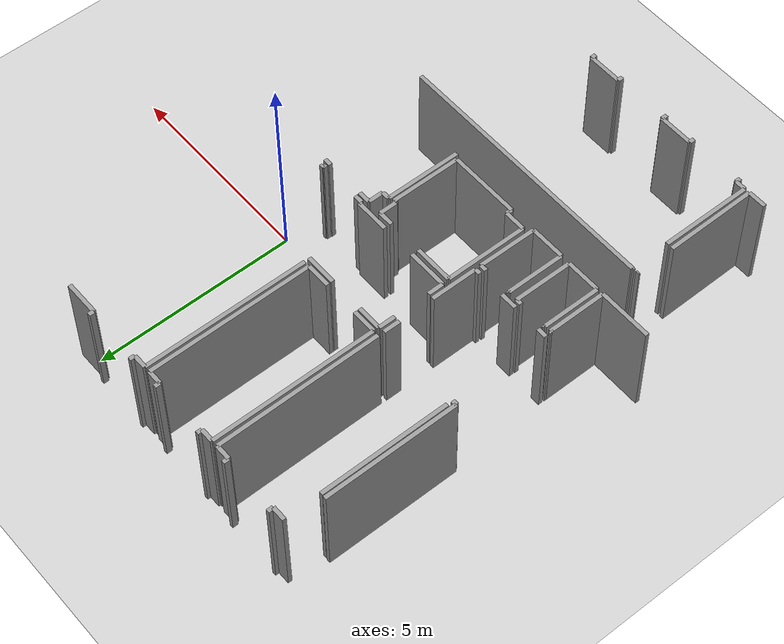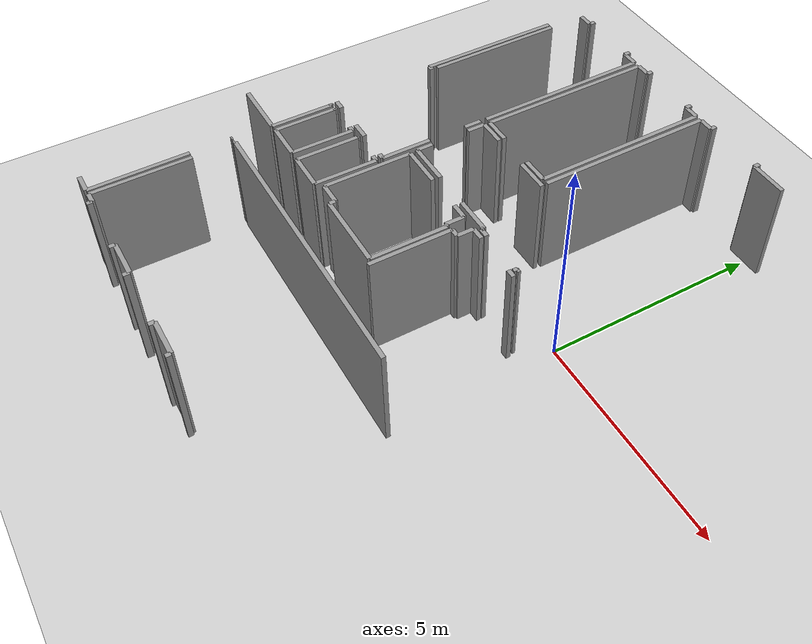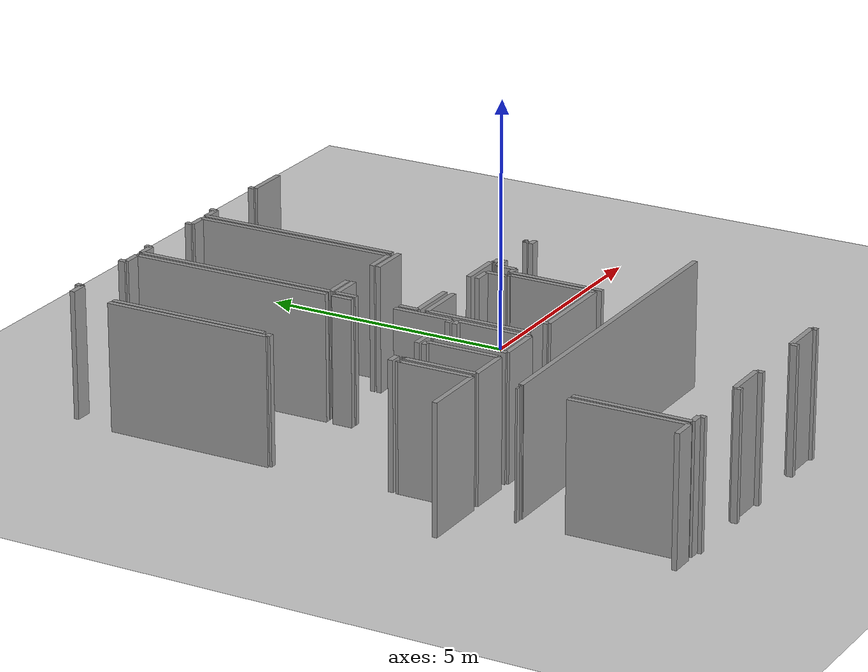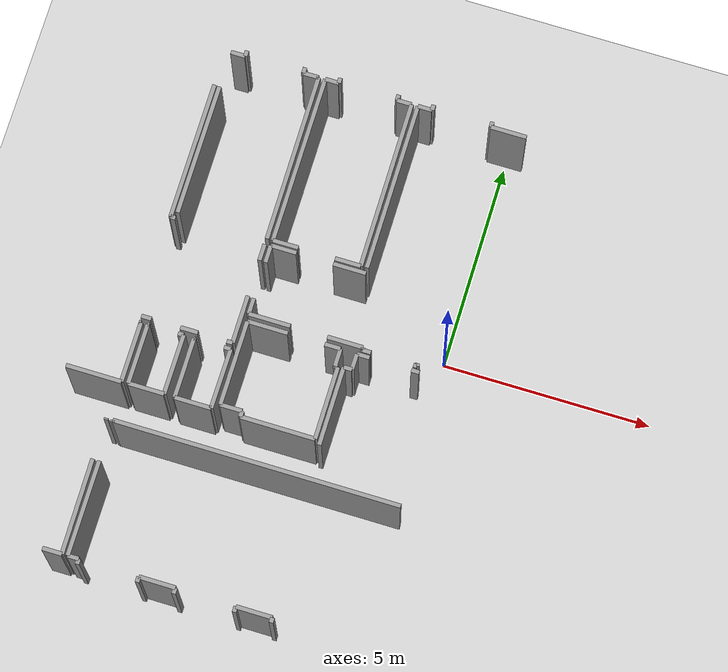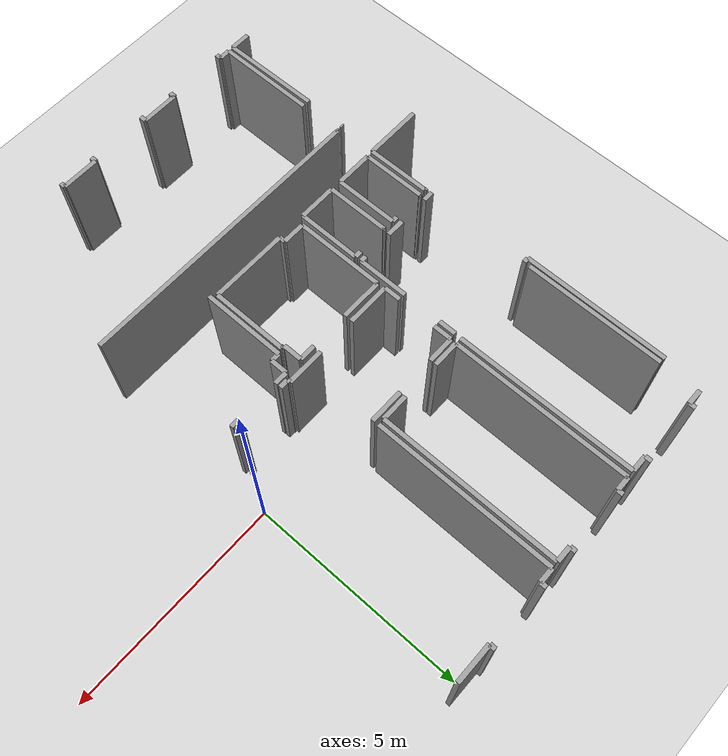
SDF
<sdf version="1.6">
 <world name="default">
  <model name="ground_plane">
   <static>1</static>
   <link name="link">
    <collision name="collision">
     <geometry><plane><normal>0 0 1</normal><size>100 100</size></plane></geometry>
     <surface><friction><ode><mu>100</mu><mu2>50</mu2></ode></friction></surface>
    </collision>
    <visual name="visual">
     <cast_shadows>0</cast_shadows>
     <geometry><plane><normal>0 0 1</normal><size>100 100</size></plane></geometry>
     <material>
      <script><uri>file://media/materials/scripts/gazebo.material</uri><name>Gazebo/Grey</name></script>
     </material>
    </visual>
   </link>
  </model>
  <model name="0510025537_Layout1_PLAN3">
   <static>1</static>
   <link name="Wall_0">
    <collision name="Wall_0_Collision">
     <geometry><box><size>1.1547944335 0.1 2.5</size></box></geometry>
     <pose>0.57739721675 0 1.25 0 0 0</pose>
    </collision>
    <visual name="Wall_0_Visual">
     <pose>0.57739721675 0 1.25 0 0 0</pose>
     <geometry><box><size>1.1547944335 0.1 2.5</size></box></geometry>
     <material>
      <script><uri>file://media/materials/scripts/gazebo.material</uri><name>Gazebo/Grey</name></script>
      <ambient>1 1 1 1</ambient>
     </material>
    </visual>
    <pose>15.6459109106 -5.61763995679 0 0 0 -1.57079632679</pose>
   </link>
   <link name="Wall_1">
    <collision name="Wall_1_Collision">
     <geometry><box><size>0.140115651014 0.1 2.5</size></box></geometry>
     <pose>0.0700578255068 0 1.25 0 0 0</pose>
    </collision>
    <visual name="Wall_1_Visual">
     <pose>0.0700578255068 0 1.25 0 0 0</pose>
     <geometry><box><size>0.140115651014 0.1 2.5</size></box></geometry>
     <material>
      <script><uri>file://media/materials/scripts/gazebo.material</uri><name>Gazebo/Grey</name></script>
      <ambient>1 1 1 1</ambient>
     </material>
    </visual>
    <pose>15.6459109106 -6.77243439029 0 0 0 3.14159265359</pose>
   </link>
   <link name="Wall_2">
    <collision name="Wall_2_Collision">
     <geometry><box><size>0.414818580416 0.1 2.5</size></box></geometry>
     <pose>0.207409290208 0 1.25 0 0 0</pose>
    </collision>
    <visual name="Wall_2_Visual">
     <pose>0.207409290208 0 1.25 0 0 0</pose>
     <geometry><box><size>0.414818580416 0.1 2.5</size></box></geometry>
     <material>
      <script><uri>file://media/materials/scripts/gazebo.material</uri><name>Gazebo/Grey</name></script>
      <ambient>1 1 1 1</ambient>
     </material>
    </visual>
    <pose>14.8190061638 -6.77243439029 0 0 0 3.14159265359</pose>
   </link>
   <link name="Wall_3">
    <collision name="Wall_3_Collision">
     <geometry><box><size>0.239816991803 0.1 2.5</size></box></geometry>
     <pose>0.119908495901 0 1.25 0 0 0</pose>
    </collision>
    <visual name="Wall_3_Visual">
     <pose>0.119908495901 0 1.25 0 0 0</pose>
     <geometry><box><size>0.239816991803 0.1 2.5</size></box></geometry>
     <material>
      <script><uri>file://media/materials/scripts/gazebo.material</uri><name>Gazebo/Grey</name></script>
      <ambient>1 1 1 1</ambient>
     </material>
    </visual>
    <pose>13.711615937 -6.77243439029 0 0 0 3.14159265359</pose>
   </link>
   <link name="Wall_33">
    <collision name="Wall_33_Collision">
     <geometry><box><size>3.32291415136 0.1 2.5</size></box></geometry>
     <pose>1.66145707568 0 1.25 0 0 0</pose>
    </collision>
    <visual name="Wall_33_Visual">
     <pose>1.66145707568 0 1.25 0 0 0</pose>
     <geometry><box><size>3.32291415136 0.1 2.5</size></box></geometry>
     <material>
      <script><uri>file://media/materials/scripts/gazebo.material</uri><name>Gazebo/Grey</name></script>
      <ambient>1 1 1 1</ambient>
     </material>
    </visual>
    <pose>13.3876024655 -1.01621020525 0 0 0 -1.57079632679</pose>
   </link>
   <link name="Wall_34">
    <collision name="Wall_34_Collision">
     <geometry><box><size>0.116350003177 0.1 2.5</size></box></geometry>
     <pose>0.0581750015886 0 1.25 0 0 0</pose>
    </collision>
    <visual name="Wall_34_Visual">
     <pose>0.0581750015886 0 1.25 0 0 0</pose>
     <geometry><box><size>0.116350003177 0.1 2.5</size></box></geometry>
     <material>
      <script><uri>file://media/materials/scripts/gazebo.material</uri><name>Gazebo/Grey</name></script>
      <ambient>1 1 1 1</ambient>
     </material>
    </visual>
    <pose>13.3876024655 -4.33912435661 0 0 0 0.0</pose>
   </link>
   <link name="Wall_35">
    <collision name="Wall_35_Collision">
     <geometry><box><size>0.400839109927 0.1 2.5</size></box></geometry>
     <pose>0.200419554964 0 1.25 0 0 0</pose>
    </collision>
    <visual name="Wall_35_Visual">
     <pose>0.200419554964 0 1.25 0 0 0</pose>
     <geometry><box><size>0.400839109927 0.1 2.5</size></box></geometry>
     <material>
      <script><uri>file://media/materials/scripts/gazebo.material</uri><name>Gazebo/Grey</name></script>
      <ambient>1 1 1 1</ambient>
     </material>
    </visual>
    <pose>15.6464192667 -4.33912435661 0 0 0 -1.57206455693</pose>
   </link>
   <link name="Wall_36">
    <collision name="Wall_36_Collision">
     <geometry><box><size>3.1744678147 0.1 2.5</size></box></geometry>
     <pose>1.58723390735 0 1.25 0 0 0</pose>
    </collision>
    <visual name="Wall_36_Visual">
     <pose>1.58723390735 0 1.25 0 0 0</pose>
     <geometry><box><size>3.1744678147 0.1 2.5</size></box></geometry>
     <material>
      <script><uri>file://media/materials/scripts/gazebo.material</uri><name>Gazebo/Grey</name></script>
      <ambient>1 1 1 1</ambient>
     </material>
    </visual>
    <pose>13.5077651395 -4.20123276355 0 0 0 1.57079632679</pose>
   </link>
   <link name="Wall_37">
    <collision name="Wall_37_Collision">
     <geometry><box><size>0.345936328398 0.1 2.5</size></box></geometry>
     <pose>0.172968164199 0 1.25 0 0 0</pose>
    </collision>
    <visual name="Wall_37_Visual">
     <pose>0.172968164199 0 1.25 0 0 0</pose>
     <geometry><box><size>0.345936328398 0.1 2.5</size></box></geometry>
     <material>
      <script><uri>file://media/materials/scripts/gazebo.material</uri><name>Gazebo/Grey</name></script>
      <ambient>1 1 1 1</ambient>
     </material>
    </visual>
    <pose>13.5077651395 -0.141716972739 0 0 0 0.0</pose>
   </link>
   <link name="Wall_38">
    <collision name="Wall_38_Collision">
     <geometry><box><size>0.13842536697 0.1 2.5</size></box></geometry>
     <pose>0.0692126834848 0 1.25 0 0 0</pose>
    </collision>
    <visual name="Wall_38_Visual">
     <pose>0.0692126834848 0 1.25 0 0 0</pose>
     <geometry><box><size>0.13842536697 0.1 2.5</size></box></geometry>
     <material>
      <script><uri>file://media/materials/scripts/gazebo.material</uri><name>Gazebo/Grey</name></script>
      <ambient>1 1 1 1</ambient>
     </material>
    </visual>
    <pose>13.8537014679 -0.141716972739 0 0 0 1.57079632679</pose>
   </link>
   <link name="Wall_39">
    <collision name="Wall_39_Collision">
     <geometry><box><size>0.140109296562 0.1 2.5</size></box></geometry>
     <pose>0.0700546482811 0 1.25 0 0 0</pose>
    </collision>
    <visual name="Wall_39_Visual">
     <pose>0.0700546482811 0 1.25 0 0 0</pose>
     <geometry><box><size>0.140109296562 0.1 2.5</size></box></geometry>
     <material>
      <script><uri>file://media/materials/scripts/gazebo.material</uri><name>Gazebo/Grey</name></script>
      <ambient>1 1 1 1</ambient>
     </material>
    </visual>
    <pose>15.2668043464 -0.00329160576984 0 0 0 -1.57079632679</pose>
   </link>
   <link name="Wall_40">
    <collision name="Wall_40_Collision">
     <geometry><box><size>0.370845777467 0.1 2.5</size></box></geometry>
     <pose>0.185422888734 0 1.25 0 0 0</pose>
    </collision>
    <visual name="Wall_40_Visual">
     <pose>0.185422888734 0 1.25 0 0 0</pose>
     <geometry><box><size>0.370845777467 0.1 2.5</size></box></geometry>
     <material>
      <script><uri>file://media/materials/scripts/gazebo.material</uri><name>Gazebo/Grey</name></script>
      <ambient>1 1 1 1</ambient>
     </material>
    </visual>
    <pose>15.2668043464 -0.143400902332 0 0 0 0.0</pose>
   </link>
   <link name="Wall_41">
    <collision name="Wall_41_Collision">
     <geometry><box><size>4.05787059041 0.1 2.5</size></box></geometry>
     <pose>2.0289352952 0 1.25 0 0 0</pose>
    </collision>
    <visual name="Wall_41_Visual">
     <pose>2.0289352952 0 1.25 0 0 0</pose>
     <geometry><box><size>4.05787059041 0.1 2.5</size></box></geometry>
     <material>
      <script><uri>file://media/materials/scripts/gazebo.material</uri><name>Gazebo/Grey</name></script>
      <ambient>1 1 1 1</ambient>
     </material>
    </visual>
    <pose>15.6376501239 -0.143400902332 0 0 0 -1.56642729256</pose>
   </link>
   <link name="Wall_64">
    <collision name="Wall_64_Collision">
     <geometry><box><size>0.457774671157 0.1 2.5</size></box></geometry>
     <pose>0.228887335579 0 1.25 0 0 0</pose>
    </collision>
    <visual name="Wall_64_Visual">
     <pose>0.228887335579 0 1.25 0 0 0</pose>
     <geometry><box><size>0.457774671157 0.1 2.5</size></box></geometry>
     <material>
      <script><uri>file://media/materials/scripts/gazebo.material</uri><name>Gazebo/Grey</name></script>
      <ambient>1 1 1 1</ambient>
     </material>
    </visual>
    <pose>13.4717989452 -12.5103132744 0 0 0 3.14159265359</pose>
   </link>
   <link name="Wall_87">
    <collision name="Wall_87_Collision">
     <geometry><box><size>0.0371735400648 0.1 2.5</size></box></geometry>
     <pose>0.0185867700324 0 1.25 0 0 0</pose>
    </collision>
    <visual name="Wall_87_Visual">
     <pose>0.0185867700324 0 1.25 0 0 0</pose>
     <geometry><box><size>0.0371735400648 0.1 2.5</size></box></geometry>
     <material>
      <script><uri>file://media/materials/scripts/gazebo.material</uri><name>Gazebo/Grey</name></script>
      <ambient>1 1 1 1</ambient>
     </material>
    </visual>
    <pose>13.4517188791 -9.2658575332 0 0 0 -1.57079632679</pose>
   </link>
   <link name="Wall_88">
    <collision name="Wall_88_Collision">
     <geometry><box><size>2.26405295432 0.1 2.5</size></box></geometry>
     <pose>1.13202647716 0 1.25 0 0 0</pose>
    </collision>
    <visual name="Wall_88_Visual">
     <pose>1.13202647716 0 1.25 0 0 0</pose>
     <geometry><box><size>2.26405295432 0.1 2.5</size></box></geometry>
     <material>
      <script><uri>file://media/materials/scripts/gazebo.material</uri><name>Gazebo/Grey</name></script>
      <ambient>1 1 1 1</ambient>
     </material>
    </visual>
    <pose>13.4517188791 -10.2463493677 0 0 0 -1.56192713082</pose>
   </link>
   <link name="Wall_89">
    <collision name="Wall_89_Collision">
     <geometry><box><size>1.31912054394 0.1 2.5</size></box></geometry>
     <pose>0.659560271971 0 1.25 0 0 0</pose>
    </collision>
    <visual name="Wall_89_Visual">
     <pose>0.659560271971 0 1.25 0 0 0</pose>
     <geometry><box><size>1.31912054394 0.1 2.5</size></box></geometry>
     <material>
      <script><uri>file://media/materials/scripts/gazebo.material</uri><name>Gazebo/Grey</name></script>
      <ambient>1 1 1 1</ambient>
     </material>
    </visual>
    <pose>13.5145008579 -8.36581305204 0 0 0 3.14159265359</pose>
   </link>
   <link name="Wall_92">
    <collision name="Wall_92_Collision">
     <geometry><box><size>0.0480396517761 0.1 2.5</size></box></geometry>
     <pose>0.024019825888 0 1.25 0 0 0</pose>
    </collision>
    <visual name="Wall_92_Visual">
     <pose>0.024019825888 0 1.25 0 0 0</pose>
     <geometry><box><size>0.0480396517761 0.1 2.5</size></box></geometry>
     <material>
      <script><uri>file://media/materials/scripts/gazebo.material</uri><name>Gazebo/Grey</name></script>
      <ambient>1 1 1 1</ambient>
     </material>
    </visual>
    <pose>13.4644913262 -6.9262756561 0 0 0 0.0</pose>
   </link>
   <link name="Wall_93">
    <collision name="Wall_93_Collision">
     <geometry><box><size>1.43953874375 0.1 2.5</size></box></geometry>
     <pose>0.719769371874 0 1.25 0 0 0</pose>
    </collision>
    <visual name="Wall_93_Visual">
     <pose>0.719769371874 0 1.25 0 0 0</pose>
     <geometry><box><size>1.43953874375 0.1 2.5</size></box></geometry>
     <material>
      <script><uri>file://media/materials/scripts/gazebo.material</uri><name>Gazebo/Grey</name></script>
      <ambient>1 1 1 1</ambient>
     </material>
    </visual>
    <pose>13.512530978 -6.9262756561 0 0 0 -1.56942791589</pose>
   </link>
   <link name="Wall_94">
    <collision name="Wall_94_Collision">
     <geometry><box><size>0.851623562305 0.1 2.5</size></box></geometry>
     <pose>0.425811781153 0 1.25 0 0 0</pose>
    </collision>
    <visual name="Wall_94_Visual">
     <pose>0.425811781153 0 1.25 0 0 0</pose>
     <geometry><box><size>0.851623562305 0.1 2.5</size></box></geometry>
     <material>
      <script><uri>file://media/materials/scripts/gazebo.material</uri><name>Gazebo/Grey</name></script>
      <ambient>1 1 1 1</ambient>
     </material>
    </visual>
    <pose>14.525049247 -8.35481985131 0 0 0 3.14159265359</pose>
   </link>
   <link name="Wall_95">
    <collision name="Wall_95_Collision">
     <geometry><box><size>1.43680498189 0.1 2.5</size></box></geometry>
     <pose>0.718402490945 0 1.25 0 0 0</pose>
    </collision>
    <visual name="Wall_95_Visual">
     <pose>0.718402490945 0 1.25 0 0 0</pose>
     <geometry><box><size>1.43680498189 0.1 2.5</size></box></geometry>
     <material>
      <script><uri>file://media/materials/scripts/gazebo.material</uri><name>Gazebo/Grey</name></script>
      <ambient>1 1 1 1</ambient>
     </material>
    </visual>
    <pose>13.6734256847 -8.35481985131 0 0 0 1.57079632679</pose>
   </link>
   <link name="Wall_96">
    <collision name="Wall_96_Collision">
     <geometry><box><size>0.0357120162674 0.1 2.5</size></box></geometry>
     <pose>0.0178560081337 0 1.25 0 0 0</pose>
    </collision>
    <visual name="Wall_96_Visual">
     <pose>0.0178560081337 0 1.25 0 0 0</pose>
     <geometry><box><size>0.0357120162674 0.1 2.5</size></box></geometry>
     <material>
      <script><uri>file://media/materials/scripts/gazebo.material</uri><name>Gazebo/Grey</name></script>
      <ambient>1 1 1 1</ambient>
     </material>
    </visual>
    <pose>13.6734256847 -6.91801486942 0 0 0 0.0</pose>
   </link>
   <link name="Wall_97">
    <collision name="Wall_97_Collision">
     <geometry><box><size>0.135731079621 0.1 2.5</size></box></geometry>
     <pose>0.0678655398106 0 1.25 0 0 0</pose>
    </collision>
    <visual name="Wall_97_Visual">
     <pose>0.0678655398106 0 1.25 0 0 0</pose>
     <geometry><box><size>0.135731079621 0.1 2.5</size></box></geometry>
     <material>
      <script><uri>file://media/materials/scripts/gazebo.material</uri><name>Gazebo/Grey</name></script>
      <ambient>1 1 1 1</ambient>
     </material>
    </visual>
    <pose>14.3944652729 -6.91801486942 0 0 0 0.0</pose>
   </link>
   <link name="Wall_98">
    <collision name="Wall_98_Collision">
     <geometry><box><size>1.43681420117 0.1 2.5</size></box></geometry>
     <pose>0.718407100584 0 1.25 0 0 0</pose>
    </collision>
    <visual name="Wall_98_Visual">
     <pose>0.718407100584 0 1.25 0 0 0</pose>
     <geometry><box><size>1.43681420117 0.1 2.5</size></box></geometry>
     <material>
      <script><uri>file://media/materials/scripts/gazebo.material</uri><name>Gazebo/Grey</name></script>
      <ambient>1 1 1 1</ambient>
     </material>
    </visual>
    <pose>14.5301963525 -6.91801486942 0 0 0 -1.57437863866</pose>
   </link>
   <link name="Wall_99">
    <collision name="Wall_99_Collision">
     <geometry><box><size>0.862489674017 0.1 2.5</size></box></geometry>
     <pose>0.431244837008 0 1.25 0 0 0</pose>
    </collision>
    <visual name="Wall_99_Visual">
     <pose>0.431244837008 0 1.25 0 0 0</pose>
     <geometry><box><size>0.862489674017 0.1 2.5</size></box></geometry>
     <material>
      <script><uri>file://media/materials/scripts/gazebo.material</uri><name>Gazebo/Grey</name></script>
      <ambient>1 1 1 1</ambient>
     </material>
    </visual>
    <pose>15.6407002605 -8.3626358264 0 0 0 3.14159265359</pose>
   </link>
   <link name="Wall_100">
    <collision name="Wall_100_Collision">
     <geometry><box><size>1.43890195082 0.1 2.5</size></box></geometry>
     <pose>0.719450975408 0 1.25 0 0 0</pose>
    </collision>
    <visual name="Wall_100_Visual">
     <pose>0.719450975408 0 1.25 0 0 0</pose>
     <geometry><box><size>1.43890195082 0.1 2.5</size></box></geometry>
     <material>
      <script><uri>file://media/materials/scripts/gazebo.material</uri><name>Gazebo/Grey</name></script>
      <ambient>1 1 1 1</ambient>
     </material>
    </visual>
    <pose>14.7782105865 -8.3626358264 0 0 0 1.57079632679</pose>
   </link>
   <link name="Wall_101">
    <collision name="Wall_101_Collision">
     <geometry><box><size>0.0303742771812 0.1 2.5</size></box></geometry>
     <pose>0.0151871385906 0 1.25 0 0 0</pose>
    </collision>
    <visual name="Wall_101_Visual">
     <pose>0.0151871385906 0 1.25 0 0 0</pose>
     <geometry><box><size>0.0303742771812 0.1 2.5</size></box></geometry>
     <material>
      <script><uri>file://media/materials/scripts/gazebo.material</uri><name>Gazebo/Grey</name></script>
      <ambient>1 1 1 1</ambient>
     </material>
    </visual>
    <pose>14.7782105865 -6.92373387558 0 0 0 0.0</pose>
   </link>
   <link name="Wall_102">
    <collision name="Wall_102_Collision">
     <geometry><box><size>0.158861282328 0.1 2.5</size></box></geometry>
     <pose>0.0794306411641 0 1.25 0 0 0</pose>
    </collision>
    <visual name="Wall_102_Visual">
     <pose>0.0794306411641 0 1.25 0 0 0</pose>
     <geometry><box><size>0.158861282328 0.1 2.5</size></box></geometry>
     <material>
      <script><uri>file://media/materials/scripts/gazebo.material</uri><name>Gazebo/Grey</name></script>
      <ambient>1 1 1 1</ambient>
     </material>
    </visual>
    <pose>15.4902903984 -6.92373387558 0 0 0 0.0</pose>
   </link>
   <link name="Wall_103">
    <collision name="Wall_103_Collision">
     <geometry><box><size>1.4389267704 0.1 2.5</size></box></geometry>
     <pose>0.719463385199 0 1.25 0 0 0</pose>
    </collision>
    <visual name="Wall_103_Visual">
     <pose>0.719463385199 0 1.25 0 0 0</pose>
     <geometry><box><size>1.4389267704 0.1 2.5</size></box></geometry>
     <material>
      <script><uri>file://media/materials/scripts/gazebo.material</uri><name>Gazebo/Grey</name></script>
      <ambient>1 1 1 1</ambient>
     </material>
    </visual>
    <pose>15.6491516808 -6.92373387558 0 0 0 -1.57666977983</pose>
   </link>
   <link name="Wall_106">
    <collision name="Wall_106_Collision">
     <geometry><box><size>0.117811526975 0.1 2.5</size></box></geometry>
     <pose>0.0589057634873 0 1.25 0 0 0</pose>
    </collision>
    <visual name="Wall_106_Visual">
     <pose>0.0589057634873 0 1.25 0 0 0</pose>
     <geometry><box><size>0.117811526975 0.1 2.5</size></box></geometry>
     <material>
      <script><uri>file://media/materials/scripts/gazebo.material</uri><name>Gazebo/Grey</name></script>
      <ambient>1 1 1 1</ambient>
     </material>
    </visual>
    <pose>18.3892546229 -12.628569613 0 0 0 1.57079632679</pose>
   </link>
   <link name="Wall_107">
    <collision name="Wall_107_Collision">
     <geometry><box><size>0.85302154159 0.1 2.5</size></box></geometry>
     <pose>0.426510770795 0 1.25 0 0 0</pose>
    </collision>
    <visual name="Wall_107_Visual">
     <pose>0.426510770795 0 1.25 0 0 0</pose>
     <geometry><box><size>0.85302154159 0.1 2.5</size></box></geometry>
     <material>
      <script><uri>file://media/materials/scripts/gazebo.material</uri><name>Gazebo/Grey</name></script>
      <ambient>1 1 1 1</ambient>
     </material>
    </visual>
    <pose>18.3892546229 -12.510758086 0 0 0 3.14159265359</pose>
   </link>
   <link name="Wall_108">
    <collision name="Wall_108_Collision">
     <geometry><box><size>0.129567261867 0.1 2.5</size></box></geometry>
     <pose>0.0647836309335 0 1.25 0 0 0</pose>
    </collision>
    <visual name="Wall_108_Visual">
     <pose>0.0647836309335 0 1.25 0 0 0</pose>
     <geometry><box><size>0.129567261867 0.1 2.5</size></box></geometry>
     <material>
      <script><uri>file://media/materials/scripts/gazebo.material</uri><name>Gazebo/Grey</name></script>
      <ambient>1 1 1 1</ambient>
     </material>
    </visual>
    <pose>17.5362330813 -12.510758086 0 0 0 -1.57079632679</pose>
   </link>
   <link name="Wall_109">
    <collision name="Wall_109_Collision">
     <geometry><box><size>0.140941729682 0.1 2.5</size></box></geometry>
     <pose>0.0704708648408 0 1.25 0 0 0</pose>
    </collision>
    <visual name="Wall_109_Visual">
     <pose>0.0704708648408 0 1.25 0 0 0</pose>
     <geometry><box><size>0.140941729682 0.1 2.5</size></box></geometry>
     <material>
      <script><uri>file://media/materials/scripts/gazebo.material</uri><name>Gazebo/Grey</name></script>
      <ambient>1 1 1 1</ambient>
     </material>
    </visual>
    <pose>16.1248459046 -12.6403253479 0 0 0 1.57079632679</pose>
   </link>
   <link name="Wall_110">
    <collision name="Wall_110_Collision">
     <geometry><box><size>0.85518205503 0.1 2.5</size></box></geometry>
     <pose>0.427591027515 0 1.25 0 0 0</pose>
    </collision>
    <visual name="Wall_110_Visual">
     <pose>0.427591027515 0 1.25 0 0 0</pose>
     <geometry><box><size>0.85518205503 0.1 2.5</size></box></geometry>
     <material>
      <script><uri>file://media/materials/scripts/gazebo.material</uri><name>Gazebo/Grey</name></script>
      <ambient>1 1 1 1</ambient>
     </material>
    </visual>
    <pose>16.1248459046 -12.4993836182 0 0 0 3.14159265359</pose>
   </link>
   <link name="Wall_111">
    <collision name="Wall_111_Collision">
     <geometry><box><size>0.128995361251 0.1 2.5</size></box></geometry>
     <pose>0.0644976806253 0 1.25 0 0 0</pose>
    </collision>
    <visual name="Wall_111_Visual">
     <pose>0.0644976806253 0 1.25 0 0 0</pose>
     <geometry><box><size>0.128995361251 0.1 2.5</size></box></geometry>
     <material>
      <script><uri>file://media/materials/scripts/gazebo.material</uri><name>Gazebo/Grey</name></script>
      <ambient>1 1 1 1</ambient>
     </material>
    </visual>
    <pose>15.2696638495 -12.4993836182 0 0 0 -1.57079632679</pose>
   </link>
   <link name="Wall_112">
    <collision name="Wall_112_Collision">
     <geometry><box><size>0.1233398996 0.1 2.5</size></box></geometry>
     <pose>0.0616699497998 0 1.25 0 0 0</pose>
    </collision>
    <visual name="Wall_112_Visual">
     <pose>0.0616699497998 0 1.25 0 0 0</pose>
     <geometry><box><size>0.1233398996 0.1 2.5</size></box></geometry>
     <material>
      <script><uri>file://media/materials/scripts/gazebo.material</uri><name>Gazebo/Grey</name></script>
      <ambient>1 1 1 1</ambient>
     </material>
    </visual>
    <pose>13.8649488467 -12.6283789795 0 0 0 1.57079632679</pose>
   </link>
   <link name="Wall_113">
    <collision name="Wall_113_Collision">
     <geometry><box><size>0.260087691428 0.1 2.5</size></box></geometry>
     <pose>0.130043845714 0 1.25 0 0 0</pose>
    </collision>
    <visual name="Wall_113_Visual">
     <pose>0.130043845714 0 1.25 0 0 0</pose>
     <geometry><box><size>0.260087691428 0.1 2.5</size></box></geometry>
     <material>
      <script><uri>file://media/materials/scripts/gazebo.material</uri><name>Gazebo/Grey</name></script>
      <ambient>1 1 1 1</ambient>
     </material>
    </visual>
    <pose>13.8649488467 -12.5050390799 0 0 0 3.14159265359</pose>
   </link>
   <link name="Wall_114">
    <collision name="Wall_114_Collision">
     <geometry><box><size>2.25595729809 0.1 2.5</size></box></geometry>
     <pose>1.12797864904 0 1.25 0 0 0</pose>
    </collision>
    <visual name="Wall_114_Visual">
     <pose>1.12797864904 0 1.25 0 0 0</pose>
     <geometry><box><size>2.25595729809 0.1 2.5</size></box></geometry>
     <material>
      <script><uri>file://media/materials/scripts/gazebo.material</uri><name>Gazebo/Grey</name></script>
      <ambient>1 1 1 1</ambient>
     </material>
    </visual>
    <pose>13.6048611552 -12.5050390799 0 0 0 1.57079632679</pose>
   </link>
   <link name="Wall_115">
    <collision name="Wall_115_Collision">
     <geometry><box><size>0.0410497553536 0.1 2.5</size></box></geometry>
     <pose>0.0205248776768 0 1.25 0 0 0</pose>
    </collision>
    <visual name="Wall_115_Visual">
     <pose>0.0205248776768 0 1.25 0 0 0</pose>
     <geometry><box><size>0.0410497553536 0.1 2.5</size></box></geometry>
     <material>
      <script><uri>file://media/materials/scripts/gazebo.material</uri><name>Gazebo/Grey</name></script>
      <ambient>1 1 1 1</ambient>
     </material>
    </visual>
    <pose>13.6048611552 -9.31040223677 0 0 0 1.57079632679</pose>
   </link>
   <link name="Wall_116">
    <collision name="Wall_116_Collision">
     <geometry><box><size>6.77791192731 0.1 2.5</size></box></geometry>
     <pose>3.38895596365 0 1.25 0 0 0</pose>
    </collision>
    <visual name="Wall_116_Visual">
     <pose>3.38895596365 0 1.25 0 0 0</pose>
     <geometry><box><size>6.77791192731 0.1 2.5</size></box></geometry>
     <material>
      <script><uri>file://media/materials/scripts/gazebo.material</uri><name>Gazebo/Grey</name></script>
      <ambient>1 1 1 1</ambient>
     </material>
    </visual>
    <pose>13.6048611552 -9.26935248141 0 0 0 0.0</pose>
   </link>
   <link name="Wall_128">
    <collision name="Wall_128_Collision">
     <geometry><box><size>0.0676749062718 0.1 2.5</size></box></geometry>
     <pose>0.0338374531359 0 1.25 0 0 0</pose>
    </collision>
    <visual name="Wall_128_Visual">
     <pose>0.0338374531359 0 1.25 0 0 0</pose>
     <geometry><box><size>0.0676749062718 0.1 2.5</size></box></geometry>
     <material>
      <script><uri>file://media/materials/scripts/gazebo.material</uri><name>Gazebo/Grey</name></script>
      <ambient>1 1 1 1</ambient>
     </material>
    </visual>
    <pose>19.7972103959 -6.00824807778 0 0 0 -1.57079632679</pose>
   </link>
   <link name="Wall_129">
    <collision name="Wall_129_Collision">
     <geometry><box><size>0.0835610345047 0.1 2.5</size></box></geometry>
     <pose>0.0417805172523 0 1.25 0 0 0</pose>
    </collision>
    <visual name="Wall_129_Visual">
     <pose>0.0417805172523 0 1.25 0 0 0</pose>
     <geometry><box><size>0.0835610345047 0.1 2.5</size></box></geometry>
     <material>
      <script><uri>file://media/materials/scripts/gazebo.material</uri><name>Gazebo/Grey</name></script>
      <ambient>1 1 1 1</ambient>
     </material>
    </visual>
    <pose>19.7972103959 -6.07592298405 0 0 0 3.14159265359</pose>
   </link>
   <link name="Wall_130">
    <collision name="Wall_130_Collision">
     <geometry><box><size>0.20334244138 0.1 2.5</size></box></geometry>
     <pose>0.10167122069 0 1.25 0 0 0</pose>
    </collision>
    <visual name="Wall_130_Visual">
     <pose>0.10167122069 0 1.25 0 0 0</pose>
     <geometry><box><size>0.20334244138 0.1 2.5</size></box></geometry>
     <material>
      <script><uri>file://media/materials/scripts/gazebo.material</uri><name>Gazebo/Grey</name></script>
      <ambient>1 1 1 1</ambient>
     </material>
    </visual>
    <pose>18.711997204 -6.07592298405 0 0 0 3.14159265359</pose>
   </link>
   <link name="Wall_131">
    <collision name="Wall_131_Collision">
     <geometry><box><size>0.0613204549787 0.1 2.5</size></box></geometry>
     <pose>0.0306602274894 0 1.25 0 0 0</pose>
    </collision>
    <visual name="Wall_131_Visual">
     <pose>0.0306602274894 0 1.25 0 0 0</pose>
     <geometry><box><size>0.0613204549787 0.1 2.5</size></box></geometry>
     <material>
      <script><uri>file://media/materials/scripts/gazebo.material</uri><name>Gazebo/Grey</name></script>
      <ambient>1 1 1 1</ambient>
     </material>
    </visual>
    <pose>18.5086547627 -6.07592298405 0 0 0 1.57079632679</pose>
   </link>
   <link name="Wall_132">
    <collision name="Wall_132_Collision">
     <geometry><box><size>0.851432928767 0.1 2.5</size></box></geometry>
     <pose>0.425716464383 0 1.25 0 0 0</pose>
    </collision>
    <visual name="Wall_132_Visual">
     <pose>0.425716464383 0 1.25 0 0 0</pose>
     <geometry><box><size>0.851432928767 0.1 2.5</size></box></geometry>
     <material>
      <script><uri>file://media/materials/scripts/gazebo.material</uri><name>Gazebo/Grey</name></script>
      <ambient>1 1 1 1</ambient>
     </material>
    </visual>
    <pose>18.5086547627 -6.01460252907 0 0 0 3.14159265359</pose>
   </link>
   <link name="Wall_133">
    <collision name="Wall_133_Collision">
     <geometry><box><size>0.989832877931 0.1 2.5</size></box></geometry>
     <pose>0.494916438965 0 1.25 0 0 0</pose>
    </collision>
    <visual name="Wall_133_Visual">
     <pose>0.494916438965 0 1.25 0 0 0</pose>
     <geometry><box><size>0.989832877931 0.1 2.5</size></box></geometry>
     <material>
      <script><uri>file://media/materials/scripts/gazebo.material</uri><name>Gazebo/Grey</name></script>
      <ambient>1 1 1 1</ambient>
     </material>
    </visual>
    <pose>16.7798627439 -6.01460252907 0 0 0 3.14159265359</pose>
   </link>
   <link name="Wall_134">
    <collision name="Wall_134_Collision">
     <geometry><box><size>0.38088581051 0.1 2.5</size></box></geometry>
     <pose>0.190442905255 0 1.25 0 0 0</pose>
    </collision>
    <visual name="Wall_134_Visual">
     <pose>0.190442905255 0 1.25 0 0 0</pose>
     <geometry><box><size>0.38088581051 0.1 2.5</size></box></geometry>
     <material>
      <script><uri>file://media/materials/scripts/gazebo.material</uri><name>Gazebo/Grey</name></script>
      <ambient>1 1 1 1</ambient>
     </material>
    </visual>
    <pose>15.7900298659 -6.01460252907 0 0 0 1.57079632679</pose>
   </link>
   <link name="Wall_135">
    <collision name="Wall_135_Collision">
     <geometry><box><size>0.41990214145 0.1 2.5</size></box></geometry>
     <pose>0.209951070725 0 1.25 0 0 0</pose>
    </collision>
    <visual name="Wall_135_Visual">
     <pose>0.209951070725 0 1.25 0 0 0</pose>
     <geometry><box><size>0.41990214145 0.1 2.5</size></box></geometry>
     <material>
      <script><uri>file://media/materials/scripts/gazebo.material</uri><name>Gazebo/Grey</name></script>
      <ambient>1 1 1 1</ambient>
     </material>
    </visual>
    <pose>15.7900298659 -4.7464446845 0 0 0 1.57079632679</pose>
   </link>
   <link name="Wall_136">
    <collision name="Wall_136_Collision">
     <geometry><box><size>0.613395183326 0.1 2.5</size></box></geometry>
     <pose>0.306697591663 0 1.25 0 0 0</pose>
    </collision>
    <visual name="Wall_136_Visual">
     <pose>0.306697591663 0 1.25 0 0 0</pose>
     <geometry><box><size>0.613395183326 0.1 2.5</size></box></geometry>
     <material>
      <script><uri>file://media/materials/scripts/gazebo.material</uri><name>Gazebo/Grey</name></script>
      <ambient>1 1 1 1</ambient>
     </material>
    </visual>
    <pose>15.7900298659 -4.32654254305 0 0 0 0.0</pose>
   </link>
   <link name="Wall_137">
    <collision name="Wall_137_Collision">
     <geometry><box><size>0.78127978649 0.1 2.5</size></box></geometry>
     <pose>0.390639893245 0 1.25 0 0 0</pose>
    </collision>
    <visual name="Wall_137_Visual">
     <pose>0.390639893245 0 1.25 0 0 0</pose>
     <geometry><box><size>0.78127978649 0.1 2.5</size></box></geometry>
     <material>
      <script><uri>file://media/materials/scripts/gazebo.material</uri><name>Gazebo/Grey</name></script>
      <ambient>1 1 1 1</ambient>
     </material>
    </visual>
    <pose>17.2810383173 -4.32654254305 0 0 0 0.0</pose>
   </link>
   <link name="Wall_143">
    <collision name="Wall_143_Collision">
     <geometry><box><size>0.614094172968 0.1 2.5</size></box></geometry>
     <pose>0.307047086484 0 1.25 0 0 0</pose>
    </collision>
    <visual name="Wall_143_Visual">
     <pose>0.307047086484 0 1.25 0 0 0</pose>
     <geometry><box><size>0.614094172968 0.1 2.5</size></box></geometry>
     <material>
      <script><uri>file://media/materials/scripts/gazebo.material</uri><name>Gazebo/Grey</name></script>
      <ambient>1 1 1 1</ambient>
     </material>
    </visual>
    <pose>17.8945605897 -4.1970388257 0 0 0 3.14159265359</pose>
   </link>
   <link name="Wall_144">
    <collision name="Wall_144_Collision">
     <geometry><box><size>0.606723009468 0.1 2.5</size></box></geometry>
     <pose>0.303361504734 0 1.25 0 0 0</pose>
    </collision>
    <visual name="Wall_144_Visual">
     <pose>0.303361504734 0 1.25 0 0 0</pose>
     <geometry><box><size>0.606723009468 0.1 2.5</size></box></geometry>
     <material>
      <script><uri>file://media/materials/scripts/gazebo.material</uri><name>Gazebo/Grey</name></script>
      <ambient>1 1 1 1</ambient>
     </material>
    </visual>
    <pose>16.4038063163 -4.1970388257 0 0 0 3.14159265359</pose>
   </link>
   <link name="Wall_145">
    <collision name="Wall_145_Collision">
     <geometry><box><size>4.06008769143 0.1 2.5</size></box></geometry>
     <pose>2.03004384571 0 1.25 0 0 0</pose>
    </collision>
    <visual name="Wall_145_Visual">
     <pose>2.03004384571 0 1.25 0 0 0</pose>
     <geometry><box><size>4.06008769143 0.1 2.5</size></box></geometry>
     <material>
      <script><uri>file://media/materials/scripts/gazebo.material</uri><name>Gazebo/Grey</name></script>
      <ambient>1 1 1 1</ambient>
     </material>
    </visual>
    <pose>15.7970833069 -4.1970388257 0 0 0 1.57079632679</pose>
   </link>
   <link name="Wall_146">
    <collision name="Wall_146_Collision">
     <geometry><box><size>0.3277625977 0.1 2.5</size></box></geometry>
     <pose>0.16388129885 0 1.25 0 0 0</pose>
    </collision>
    <visual name="Wall_146_Visual">
     <pose>0.16388129885 0 1.25 0 0 0</pose>
     <geometry><box><size>0.3277625977 0.1 2.5</size></box></geometry>
     <material>
      <script><uri>file://media/materials/scripts/gazebo.material</uri><name>Gazebo/Grey</name></script>
      <ambient>1 1 1 1</ambient>
     </material>
    </visual>
    <pose>15.7970833069 -0.13695113427 0 0 0 0.0</pose>
   </link>
   <link name="Wall_147">
    <collision name="Wall_147_Collision">
     <geometry><box><size>0.126612442016 0.1 2.5</size></box></geometry>
     <pose>0.0633062210078 0 1.25 0 0 0</pose>
    </collision>
    <visual name="Wall_147_Visual">
     <pose>0.0633062210078 0 1.25 0 0 0</pose>
     <geometry><box><size>0.126612442016 0.1 2.5</size></box></geometry>
     <material>
      <script><uri>file://media/materials/scripts/gazebo.material</uri><name>Gazebo/Grey</name></script>
      <ambient>1 1 1 1</ambient>
     </material>
    </visual>
    <pose>16.1248459046 -0.13695113427 0 0 0 1.57079632679</pose>
   </link>
   <link name="Wall_148">
    <collision name="Wall_148_Collision">
     <geometry><box><size>0.136169536761 0.1 2.5</size></box></geometry>
     <pose>0.0680847683803 0 1.25 0 0 0</pose>
    </collision>
    <visual name="Wall_148_Visual">
     <pose>0.0680847683803 0 1.25 0 0 0</pose>
     <geometry><box><size>0.136169536761 0.1 2.5</size></box></geometry>
     <material>
      <script><uri>file://media/materials/scripts/gazebo.material</uri><name>Gazebo/Grey</name></script>
      <ambient>1 1 1 1</ambient>
     </material>
    </visual>
    <pose>17.5343267459 -0.0103386922539 0 0 0 -1.57079632679</pose>
   </link>
   <link name="Wall_149">
    <collision name="Wall_149_Collision">
     <geometry><box><size>0.353498125437 0.1 2.5</size></box></geometry>
     <pose>0.176749062718 0 1.25 0 0 0</pose>
    </collision>
    <visual name="Wall_149_Visual">
     <pose>0.176749062718 0 1.25 0 0 0</pose>
     <geometry><box><size>0.353498125437 0.1 2.5</size></box></geometry>
     <material>
      <script><uri>file://media/materials/scripts/gazebo.material</uri><name>Gazebo/Grey</name></script>
      <ambient>1 1 1 1</ambient>
     </material>
    </visual>
    <pose>17.5343267459 -0.146508229014 0 0 0 0.0</pose>
   </link>
   <link name="Wall_150">
    <collision name="Wall_150_Collision">
     <geometry><box><size>4.05053619717 0.1 2.5</size></box></geometry>
     <pose>2.02526809858 0 1.25 0 0 0</pose>
    </collision>
    <visual name="Wall_150_Visual">
     <pose>2.02526809858 0 1.25 0 0 0</pose>
     <geometry><box><size>4.05053619717 0.1 2.5</size></box></geometry>
     <material>
      <script><uri>file://media/materials/scripts/gazebo.material</uri><name>Gazebo/Grey</name></script>
      <ambient>1 1 1 1</ambient>
     </material>
    </visual>
    <pose>17.8878248713 -0.146508229014 0 0 0 -1.56913340585</pose>
   </link>
   <link name="Wall_151">
    <collision name="Wall_151_Collision">
     <geometry><box><size>4.05487068692 0.1 2.5</size></box></geometry>
     <pose>2.02743534346 0 1.25 0 0 0</pose>
    </collision>
    <visual name="Wall_151_Visual">
     <pose>2.02743534346 0 1.25 0 0 0</pose>
     <geometry><box><size>4.05487068692 0.1 2.5</size></box></geometry>
     <material>
      <script><uri>file://media/materials/scripts/gazebo.material</uri><name>Gazebo/Grey</name></script>
      <ambient>1 1 1 1</ambient>
     </material>
    </visual>
    <pose>18.0389972676 -4.1970388257 0 0 0 1.57079632679</pose>
   </link>
   <link name="Wall_152">
    <collision name="Wall_152_Collision">
     <geometry><box><size>0.340789222851 0.1 2.5</size></box></geometry>
     <pose>0.170394611425 0 1.25 0 0 0</pose>
    </collision>
    <visual name="Wall_152_Visual">
     <pose>0.170394611425 0 1.25 0 0 0</pose>
     <geometry><box><size>0.340789222851 0.1 2.5</size></box></geometry>
     <material>
      <script><uri>file://media/materials/scripts/gazebo.material</uri><name>Gazebo/Grey</name></script>
      <ambient>1 1 1 1</ambient>
     </material>
    </visual>
    <pose>18.0389972676 -0.142168138781 0 0 0 0.0</pose>
   </link>
   <link name="Wall_153">
    <collision name="Wall_153_Collision">
     <geometry><box><size>0.132693651903 0.1 2.5</size></box></geometry>
     <pose>0.0663468259516 0 1.25 0 0 0</pose>
    </collision>
    <visual name="Wall_153_Visual">
     <pose>0.0663468259516 0 1.25 0 0 0</pose>
     <geometry><box><size>0.132693651903 0.1 2.5</size></box></geometry>
     <material>
      <script><uri>file://media/materials/scripts/gazebo.material</uri><name>Gazebo/Grey</name></script>
      <ambient>1 1 1 1</ambient>
     </material>
    </visual>
    <pose>18.3797864904 -0.142168138781 0 0 0 1.57079632679</pose>
   </link>
   <link name="Wall_154">
    <collision name="Wall_154_Collision">
     <geometry><box><size>0.127476647391 0.1 2.5</size></box></geometry>
     <pose>0.0637383236957 0 1.25 0 0 0</pose>
    </collision>
    <visual name="Wall_154_Visual">
     <pose>0.0637383236957 0 1.25 0 0 0</pose>
     <geometry><box><size>0.127476647391 0.1 2.5</size></box></geometry>
     <material>
      <script><uri>file://media/materials/scripts/gazebo.material</uri><name>Gazebo/Grey</name></script>
      <ambient>1 1 1 1</ambient>
     </material>
    </visual>
    <pose>19.7941602593 -0.00947448687806 0 0 0 -1.57079632679</pose>
   </link>
   <link name="Wall_155">
    <collision name="Wall_155_Collision">
     <geometry><box><size>0.853656986719 0.1 2.5</size></box></geometry>
     <pose>0.42682849336 0 1.25 0 0 0</pose>
    </collision>
    <visual name="Wall_155_Visual">
     <pose>0.42682849336 0 1.25 0 0 0</pose>
     <geometry><box><size>0.853656986719 0.1 2.5</size></box></geometry>
     <material>
      <script><uri>file://media/materials/scripts/gazebo.material</uri><name>Gazebo/Grey</name></script>
      <ambient>1 1 1 1</ambient>
     </material>
    </visual>
    <pose>19.7941602593 -0.13695113427 0 0 0 0.0</pose>
   </link>
   <link name="Wall_160">
    <collision name="Wall_160_Collision">
     <geometry><box><size>1.76736353816 0.1 2.5</size></box></geometry>
     <pose>0.883681769079 0 1.25 0 0 0</pose>
    </collision>
    <visual name="Wall_160_Visual">
     <pose>0.883681769079 0 1.25 0 0 0</pose>
     <geometry><box><size>1.76736353816 0.1 2.5</size></box></geometry>
     <material>
      <script><uri>file://media/materials/scripts/gazebo.material</uri><name>Gazebo/Grey</name></script>
      <ambient>1 1 1 1</ambient>
     </material>
    </visual>
    <pose>18.0957425176 -8.35850543306 0 0 0 3.14159265359</pose>
   </link>
   <link name="Wall_161">
    <collision name="Wall_161_Collision">
     <geometry><box><size>0.137891593061 0.1 2.5</size></box></geometry>
     <pose>0.0689457965305 0 1.25 0 0 0</pose>
    </collision>
    <visual name="Wall_161_Visual">
     <pose>0.0689457965305 0 1.25 0 0 0</pose>
     <geometry><box><size>0.137891593061 0.1 2.5</size></box></geometry>
     <material>
      <script><uri>file://media/materials/scripts/gazebo.material</uri><name>Gazebo/Grey</name></script>
      <ambient>1 1 1 1</ambient>
     </material>
    </visual>
    <pose>16.3283789795 -8.35850543306 0 0 0 1.57079632679</pose>
   </link>
   <link name="Wall_162">
    <collision name="Wall_162_Collision">
     <geometry><box><size>0.513948020588 0.1 2.5</size></box></geometry>
     <pose>0.256974010294 0 1.25 0 0 0</pose>
    </collision>
    <visual name="Wall_162_Visual">
     <pose>0.256974010294 0 1.25 0 0 0</pose>
     <geometry><box><size>0.513948020588 0.1 2.5</size></box></geometry>
     <material>
      <script><uri>file://media/materials/scripts/gazebo.material</uri><name>Gazebo/Grey</name></script>
      <ambient>1 1 1 1</ambient>
     </material>
    </visual>
    <pose>16.3283789795 -8.22061383999 0 0 0 3.14159265359</pose>
   </link>
   <link name="Wall_163">
    <collision name="Wall_163_Collision">
     <geometry><box><size>2.03024718816 0.1 2.5</size></box></geometry>
     <pose>1.01512359408 0 1.25 0 0 0</pose>
    </collision>
    <visual name="Wall_163_Visual">
     <pose>1.01512359408 0 1.25 0 0 0</pose>
     <geometry><box><size>2.03024718816 0.1 2.5</size></box></geometry>
     <material>
      <script><uri>file://media/materials/scripts/gazebo.material</uri><name>Gazebo/Grey</name></script>
      <ambient>1 1 1 1</ambient>
     </material>
    </visual>
    <pose>15.8144309589 -8.22061383999 0 0 0 1.57079632679</pose>
   </link>
   <link name="Wall_164">
    <collision name="Wall_164_Collision">
     <geometry><box><size>0.962572281883 0.1 2.5</size></box></geometry>
     <pose>0.481286140942 0 1.25 0 0 0</pose>
    </collision>
    <visual name="Wall_164_Visual">
     <pose>0.481286140942 0 1.25 0 0 0</pose>
     <geometry><box><size>0.962572281883 0.1 2.5</size></box></geometry>
     <material>
      <script><uri>file://media/materials/scripts/gazebo.material</uri><name>Gazebo/Grey</name></script>
      <ambient>1 1 1 1</ambient>
     </material>
    </visual>
    <pose>15.8144309589 -6.19036665184 0 0 0 0.0</pose>
   </link>
   <link name="Wall_165">
    <collision name="Wall_165_Collision">
     <geometry><box><size>0.372752112855 0.1 2.5</size></box></geometry>
     <pose>0.186376056428 0 1.25 0 0 0</pose>
    </collision>
    <visual name="Wall_165_Visual">
     <pose>0.186376056428 0 1.25 0 0 0</pose>
     <geometry><box><size>0.372752112855 0.1 2.5</size></box></geometry>
     <material>
      <script><uri>file://media/materials/scripts/gazebo.material</uri><name>Gazebo/Grey</name></script>
      <ambient>1 1 1 1</ambient>
     </material>
    </visual>
    <pose>17.6531549851 -6.19036665184 0 0 0 0.0</pose>
   </link>
   <link name="Wall_166">
    <collision name="Wall_166_Collision">
     <geometry><box><size>0.42835356167 0.1 2.5</size></box></geometry>
     <pose>0.214176780835 0 1.25 0 0 0</pose>
    </collision>
    <visual name="Wall_166_Visual">
     <pose>0.214176780835 0 1.25 0 0 0</pose>
     <geometry><box><size>0.42835356167 0.1 2.5</size></box></geometry>
     <material>
      <script><uri>file://media/materials/scripts/gazebo.material</uri><name>Gazebo/Grey</name></script>
      <ambient>1 1 1 1</ambient>
     </material>
    </visual>
    <pose>18.0259070979 -6.19036665184 0 0 0 -1.57079632679</pose>
   </link>
   <link name="Wall_167">
    <collision name="Wall_167_Collision">
     <geometry><box><size>0.0695176971468 0.1 2.5</size></box></geometry>
     <pose>0.0347588485734 0 1.25 0 0 0</pose>
    </collision>
    <visual name="Wall_167_Visual">
     <pose>0.0347588485734 0 1.25 0 0 0</pose>
     <geometry><box><size>0.0695176971468 0.1 2.5</size></box></geometry>
     <material>
      <script><uri>file://media/materials/scripts/gazebo.material</uri><name>Gazebo/Grey</name></script>
      <ambient>1 1 1 1</ambient>
     </material>
    </visual>
    <pose>18.0259070979 -6.61872021351 0 0 0 0.0</pose>
   </link>
   <link name="Wall_168">
    <collision name="Wall_168_Collision">
     <geometry><box><size>1.73978524856 0.1 2.5</size></box></geometry>
     <pose>0.869892624279 0 1.25 0 0 0</pose>
    </collision>
    <visual name="Wall_168_Visual">
     <pose>0.869892624279 0 1.25 0 0 0</pose>
     <geometry><box><size>1.73978524856 0.1 2.5</size></box></geometry>
     <material>
      <script><uri>file://media/materials/scripts/gazebo.material</uri><name>Gazebo/Grey</name></script>
      <ambient>1 1 1 1</ambient>
     </material>
    </visual>
    <pose>18.0954247951 -6.61872021351 0 0 0 -1.57061370508</pose>
   </link>
   <link name="Wall_170">
    <collision name="Wall_170_Collision">
     <geometry><box><size>1.88644595539 0.1 2.5</size></box></geometry>
     <pose>0.943222977696 0 1.25 0 0 0</pose>
    </collision>
    <visual name="Wall_170_Visual">
     <pose>0.943222977696 0 1.25 0 0 0</pose>
     <geometry><box><size>1.88644595539 0.1 2.5</size></box></geometry>
     <material>
      <script><uri>file://media/materials/scripts/gazebo.material</uri><name>Gazebo/Grey</name></script>
      <ambient>1 1 1 1</ambient>
     </material>
    </visual>
    <pose>18.2218148313 -8.46379869098 0 0 0 1.57079632679</pose>
   </link>
   <link name="Wall_171">
    <collision name="Wall_171_Collision">
     <geometry><box><size>0.194001397979 0.1 2.5</size></box></geometry>
     <pose>0.0970006989896 0 1.25 0 0 0</pose>
    </collision>
    <visual name="Wall_171_Visual">
     <pose>0.0970006989896 0 1.25 0 0 0</pose>
     <geometry><box><size>0.194001397979 0.1 2.5</size></box></geometry>
     <material>
      <script><uri>file://media/materials/scripts/gazebo.material</uri><name>Gazebo/Grey</name></script>
      <ambient>1 1 1 1</ambient>
     </material>
    </visual>
    <pose>18.2218148313 -6.57735273559 0 0 0 0.0</pose>
   </link>
   <link name="Wall_172">
    <collision name="Wall_172_Collision">
     <geometry><box><size>0.377454406812 0.1 2.5</size></box></geometry>
     <pose>0.188727203406 0 1.25 0 0 0</pose>
    </collision>
    <visual name="Wall_172_Visual">
     <pose>0.188727203406 0 1.25 0 0 0</pose>
     <geometry><box><size>0.377454406812 0.1 2.5</size></box></geometry>
     <material>
      <script><uri>file://media/materials/scripts/gazebo.material</uri><name>Gazebo/Grey</name></script>
      <ambient>1 1 1 1</ambient>
     </material>
    </visual>
    <pose>18.4158162293 -6.57735273559 0 0 0 1.57079632679</pose>
   </link>
   <link name="Wall_173">
    <collision name="Wall_173_Collision">
     <geometry><box><size>0.300946813243 0.1 2.5</size></box></geometry>
     <pose>0.150473406621 0 1.25 0 0 0</pose>
    </collision>
    <visual name="Wall_173_Visual">
     <pose>0.150473406621 0 1.25 0 0 0</pose>
     <geometry><box><size>0.300946813243 0.1 2.5</size></box></geometry>
     <material>
      <script><uri>file://media/materials/scripts/gazebo.material</uri><name>Gazebo/Grey</name></script>
      <ambient>1 1 1 1</ambient>
     </material>
    </visual>
    <pose>18.4158162293 -6.19989832878 0 0 0 0.0</pose>
   </link>
   <link name="Wall_174">
    <collision name="Wall_174_Collision">
     <geometry><box><size>0.188028213764 0.1 2.5</size></box></geometry>
     <pose>0.0940141068819 0 1.25 0 0 0</pose>
    </collision>
    <visual name="Wall_174_Visual">
     <pose>0.0940141068819 0 1.25 0 0 0</pose>
     <geometry><box><size>0.188028213764 0.1 2.5</size></box></geometry>
     <material>
      <script><uri>file://media/materials/scripts/gazebo.material</uri><name>Gazebo/Grey</name></script>
      <ambient>1 1 1 1</ambient>
     </material>
    </visual>
    <pose>19.7043718625 -6.19989832878 0 0 0 0.0</pose>
   </link>
   <pose>-20.25 5.29032534791 0 0 0 0</pose>
  </model>
 </world>
</sdf>
